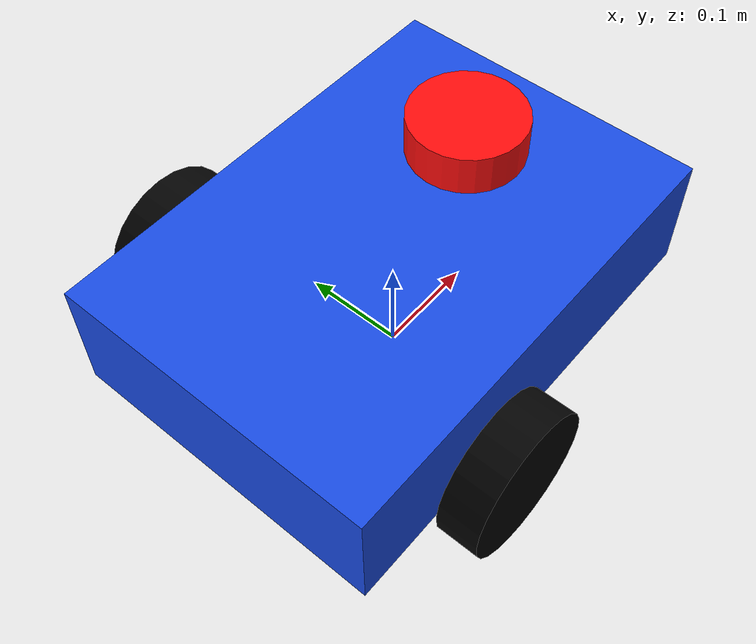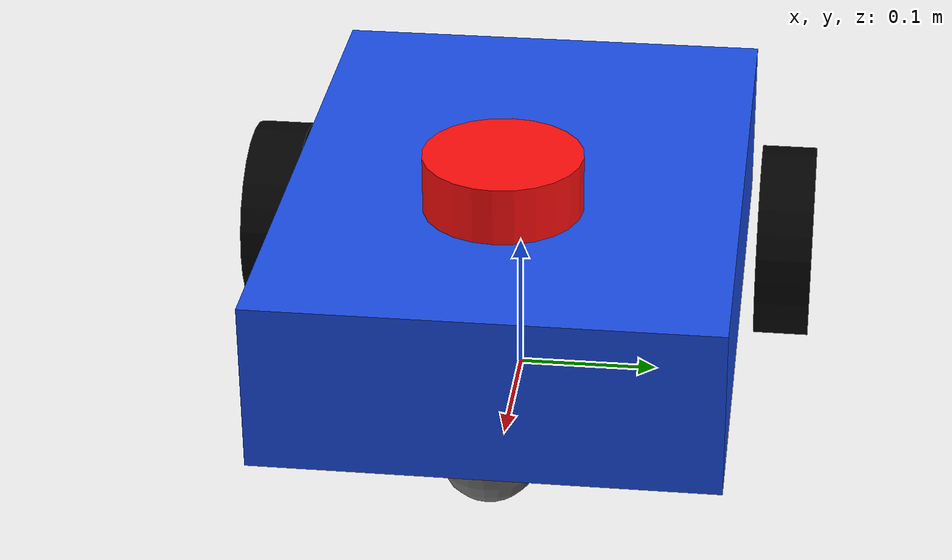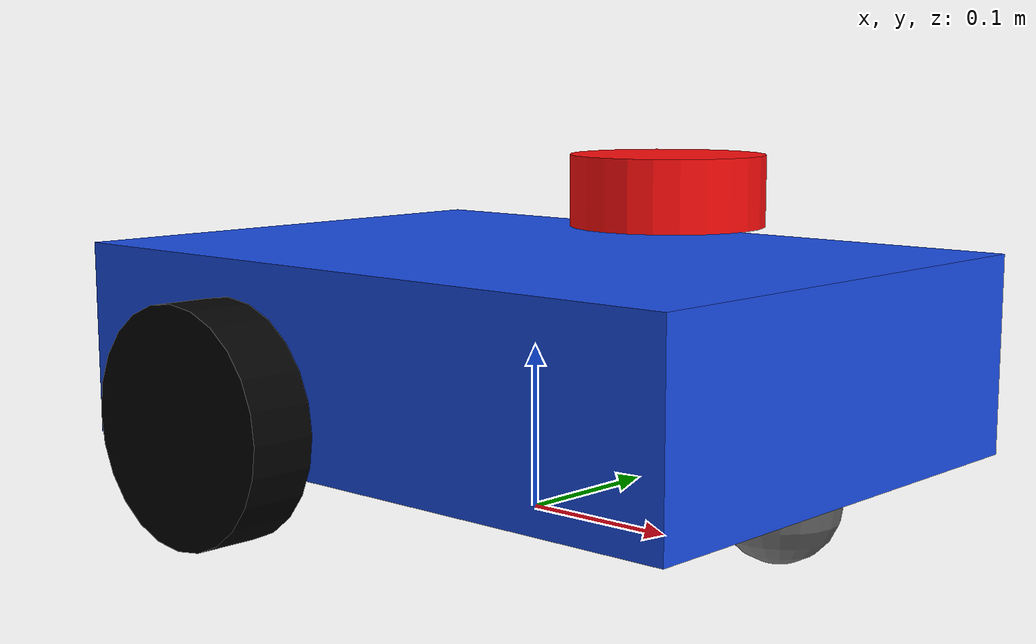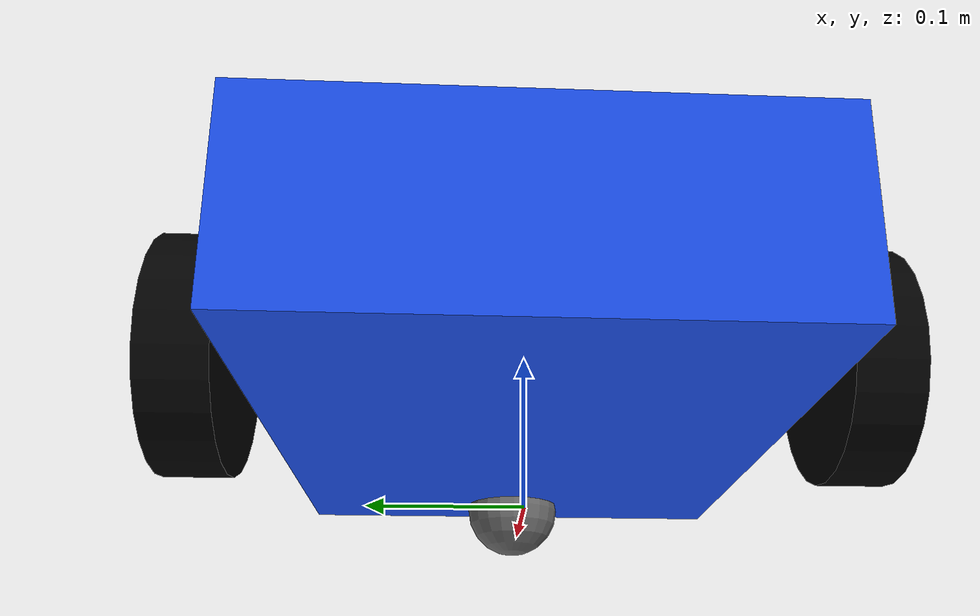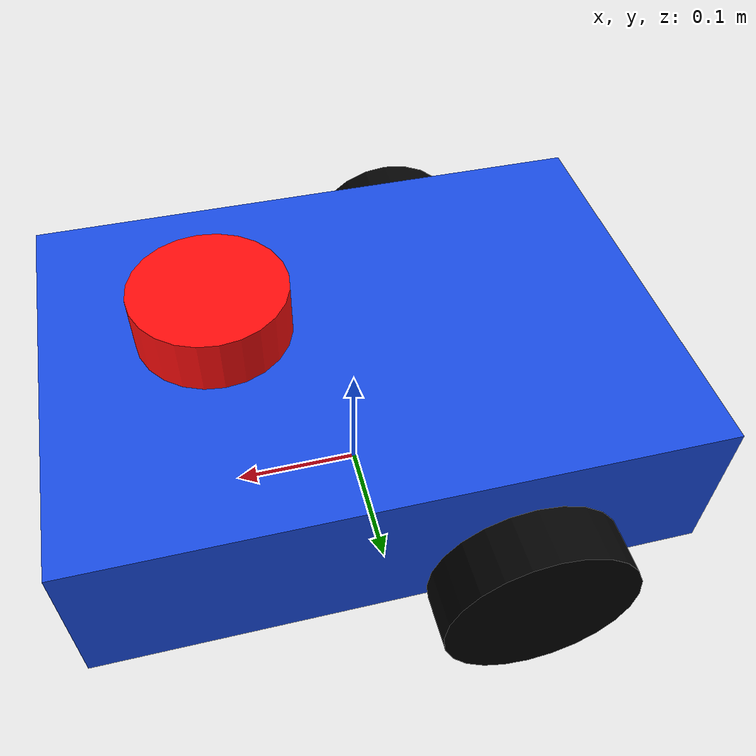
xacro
<?xml version="1.0"?>

<!-- Starts the robot definition
Defines the name
xmlns:xacro="http://www.ros.org/wiki/xacro" Enables the Xacro syntax, without this the file would be plain URDF -->
<robot name="simple_sd_robot" xmlns:xacro="http://www.ros.org/wiki/xacro">

  <!-- Robot Dimensions -->

  <xacro:property name="base_length" value="0.45"/> <!-- Main robot body length -->
  <xacro:property name="base_width"  value="0.32"/> <!-- Main robot body width -->
  <xacro:property name="base_height" value="0.12"/> <!-- Main robot body height -->

  <!-- Rear drive wheels dimensions and positions -->
  <xacro:property name="wheel_radius" value="0.07"/>
  <xacro:property name="wheel_width"  value="0.04"/>
  <xacro:property name="wheel_x"      value="-0.08"/> <!-- Wheels are behind the center of the base link -->
  <xacro:property name="wheel_y"      value="0.19"/>  <!-- Left Wheel at postive y and right wheel at negative y -->
  <xacro:property name="wheel_z"      value="-0.03"/> <!-- Wheels below center of base link -->

  <!-- Front caster wheel dimensions and positions -->
  <xacro:property name="caster_radius" value="0.035"/>
  <xacro:property name="caster_x"      value="0.18"/> <!-- Caster wheel placed forward of robot center -->
  <xacro:property name="caster_z"      value="-0.065"/> <!-- Caster wheel placed below the base center -->

  <!-- Base Footprint -->

  <link name="base_footprint"/> <!-- Base_footprint is a reference frame, represents robots position projected onto the ground. -->

  <joint name="base_footprint_joint" type="fixed"> <!-- Fixed joint means the child link does not move relative to the parent link. -->
    <parent link="base_footprint"/>
    <child link="base_link"/> <!-- base_footprint is the parent link, base_link is the child link. -->
    <origin xyz="0 0 0.10" rpy="0 0 0"/> <!-- base_link is 0.10 m above the parent link (base_footprint). -->
  </joint>

  <!-- Base Link -->

  <link name="base_link"> <!-- The main body coordinate frame. -->
    <visual> <!-- Visual Box -->
      <origin xyz="0 0 0" rpy="0 0 0"/> <!-- Visual box is centered on the base_link frame. -->
      <geometry>
        <box size="${base_length} ${base_width} ${base_height}"/> <!-- Creates a rectangular box. The Xacros are defined earlier in the file. -->
      </geometry>
      <material name="blue">
        <color rgba="0.1 0.3 0.9 1"/> <!-- RGBA format, A (alpha is transparency). -->
      </material>
    </visual>

    <collision> <!-- Defines the collision shape of the robot, used by the physics side of the simulation. -->
      <origin xyz="0 0 0" rpy="0 0 0"/>
      <geometry>
        <box size="${base_length} ${base_width} ${base_height}"/> <!-- Same dimensions as the robot. -->
      </geometry>
    </collision>

    <inertial> <!-- Defines mass and inertia -->
      <origin xyz="0 0 0" rpy="0 0 0"/>
      <mass value="5.0"/>
      <!-- Inertia matrix, defines how hard it is rotate the body about each axis. -->
      <inertia
        ixx="0.05" ixy="0.0" ixz="0.0"
        iyy="0.05" iyz="0.0"
        izz="0.08"/>
    </inertial>
  </link>

  <!-- Left Rear Drive Wheel -->

  <link name="left_wheel_link"> <!-- Defines left wheel as a seperate link, since it rotates -->
    <visual>
      <origin xyz="0 0 0" rpy="1.5708 0 0"/> <!-- Wheel visual at the origin of the wheel frame. -->
      <geometry> <!-- The cylinder is also rotated about the x axis by 90 deg - it is aligned along y axis initially, now rotated to align along z axis. -->
        <cylinder radius="${wheel_radius}" length="${wheel_width}"/> <!-- Xacro expression that defines wheel dimensions. -->
      </geometry>
      <material name="black"> <!-- Black Wheels -->
        <color rgba="0.01 0.01 0.01 1"/>
      </material>
    </visual>

    <collision> <!-- Collision geometry to match visual geometry -->
      <origin xyz="0 0 0" rpy="1.5708 0 0"/>
      <geometry>
        <cylinder radius="${wheel_radius}" length="${wheel_width}"/>
      </geometry>
    </collision>

    <inertial> <!-- Wheel intertia and mass definitions. -->
      <mass value="0.5"/>
      <!--Rotational inertias are approximated at 0.001, need to calculate wheel inertia based on mass, r and w for accurate simulation. -->
      <inertia
        ixx="0.001" ixy="0.0" ixz="0.0"
        iyy="0.001" iyz="0.0"
        izz="0.001"/>
    </inertial>
  </link>

  <joint name="left_wheel_joint" type="continuous"> <!-- Defines Joint connecting left wheel to the base, continuous means there's no angle limits on rotation. -->
    <parent link="base_link"/> <!-- Left wheel link is the child link to the base_link (parent_link). -->
    <child link="left_wheel_link"/> <!-- Wheel link is attached to the base link. -->
    <origin xyz="${wheel_x} ${wheel_y} ${wheel_z}" rpy="0 0 0"/> <!--Left wheel position relative to the base_link. -->
    <axis xyz="0 1 0"/> <!-- Wheel rotates around y-axis. -->
  </joint>

  <!-- Right Rear Drive Wheel -->
<!-- Right wheel link is identical to the left, except negative values in the y axis, so it places it on the right. -->
  <link name="right_wheel_link">
    <visual>
      <origin xyz="0 0 0" rpy="1.5708 0 0"/>
      <geometry>
        <cylinder radius="${wheel_radius}" length="${wheel_width}"/>
      </geometry>
      <material name="black">
        <color rgba="0.01 0.01 0.01 1"/>
      </material>
    </visual>

    <collision>
      <origin xyz="0 0 0" rpy="1.5708 0 0"/>
      <geometry>
        <cylinder radius="${wheel_radius}" length="${wheel_width}"/>
      </geometry>
    </collision>

    <inertial>
      <mass value="0.5"/>
      <inertia
        ixx="0.001" ixy="0.0" ixz="0.0"
        iyy="0.001" iyz="0.0"
        izz="0.001"/>
    </inertial>
  </link>

  <joint name="right_wheel_joint" type="continuous">
    <parent link="base_link"/>
    <child link="right_wheel_link"/>
    <origin xyz="${wheel_x} -${wheel_y} ${wheel_z}" rpy="0 0 0"/>
    <axis xyz="0 1 0"/>
  </joint>

  <!-- Front Caster Wheel -->
<!-- Defining the caster wheel. -->
  <link name="caster_link">
    <visual>
      <origin xyz="0 0 0" rpy="0 0 0"/>
      <geometry>
        <sphere radius="${caster_radius}"/> <!-- Caster is modeled as a sphere. -->
      </geometry>
      <material name="gray">
        <color rgba="0.4 0.4 0.4 1"/>
      </material>
    </visual>

    <collision>
      <origin xyz="0 0 0" rpy="0 0 0"/>
      <geometry>
        <sphere radius="${caster_radius}"/>
      </geometry>
    </collision>

    <inertial>
      <mass value="0.1"/>
      <inertia
        ixx="0.0001" ixy="0.0" ixz="0.0"
        iyy="0.0001" iyz="0.0"
        izz="0.0001"/>
    </inertial>
  </link>

  <joint name="caster_joint" type="fixed"> <!-- Defines the caster is a fixed sphere. -->
    <parent link="base_link"/>
    <child link="caster_link"/> <!-- Caster link is the child link to the parent, base_link. -->
    <origin xyz="${caster_x} 0 ${caster_z}" rpy="0 0 0"/>
  </joint>

  <!-- Lidar Link -->

  <link name="lidar_link">
    <visual>
      <origin xyz="0 0 0" rpy="0 0 0"/>
      <geometry>
        <cylinder radius="0.055" length="0.04"/>
      </geometry>
      <material name="red">
        <color rgba="1 0.05 0.05 1"/>
      </material>
    </visual>

    <collision>
      <origin xyz="0 0 0" rpy="0 0 0"/>
      <geometry>
        <cylinder radius="0.055" length="0.04"/>
      </geometry>
    </collision>

    <inertial>
      <mass value="0.2"/>
      <inertia
        ixx="0.0002" ixy="0.0" ixz="0.0"
        iyy="0.0002" iyz="0.0"
        izz="0.0002"/>
    </inertial>
  </link>

  <joint name="lidar_joint" type="fixed"> <!-- The lidar is fixed to the base. It does not move relative to the robot body. -->
    <parent link="base_link"/>
    <child link="lidar_link"/>
    <origin xyz="0.10 0 0.10" rpy="0 0 0"/>
  </joint>

  <!-- Gazebo Visual Materials -->

  <gazebo reference="base_link"> <!-- Gives Gazebo specific material styling to, in this case base_link. -->
    <material>Gazebo/Blue</material> <!-- URDF material affects general robot visualization, Gazebo material block affects how Gazebo renders the model. -->
  </gazebo>

  <gazebo reference="left_wheel_link">
    <material>Gazebo/Black</material>
  </gazebo>

  <gazebo reference="right_wheel_link">
    <material>Gazebo/Black</material>
  </gazebo>

  <gazebo reference="caster_link">
    <material>Gazebo/Grey</material>
  </gazebo>

  <gazebo reference="lidar_link">
    <material>Gazebo/Red</material>
  </gazebo>

  <!-- Gazebo Diff Drive Plugin -->

  <gazebo>
    <plugin name="diff_drive_controller" filename="libgazebo_ros_diff_drive.so"> <!-- Loads Gazebo-ROS differential drive plugin. -->
    <!-- Makes the robot behave like a differential drive robot, listens to velocity commands and moves the wheels. -->
      <ros> <!-- Puts the plugin in the root namespace. -->
        <namespace>/</namespace> <!-- The topics apprear as, for example, /cmd_vel instead of say, /sd_robot/cmd_vel, etc. -->
      </ros>

      <left_joint>left_wheel_joint</left_joint> <!-- Indicates to the plugin which joints drive the wheels. -->
      <right_joint>right_wheel_joint</right_joint> <!-- Robot will not move if the names are wrong. -->

      <wheel_separation>0.38</wheel_separation> <!-- Tells the plugin the seperation/distance between R/L wheels. -->
      <wheel_diameter>0.14</wheel_diameter> <!-- Wheel diameter - if values are off, the odometry will be off. -->

      <max_wheel_torque>20</max_wheel_torque> <!-- Upper limit on the wheel torque. -->
      <max_wheel_acceleration>2.0</max_wheel_acceleration> <!-- Upper limit on the acceleration. -->
      <command_topic>cmd_vel</command_topic> <!-- Tells the plugin which topic to listen to. -->
      <odometry_topic>odom</odometry_topic> <!-- Tells the plugin to publish odometry on the /odom topic. -->
      <odometry_frame>odom</odometry_frame> <!--Odometry frame is called odom. -->
      <robot_base_frame>base_footprint</robot_base_frame> <!-- Odometry is published for the robot frame. -->

      <publish_odom>true</publish_odom> <!-- Means the plugin publishes /odom messages -->
      <publish_odom_tf>true</publish_odom_tf> <!--Plugin publishes the TF transform  -->
      <publish_wheel_tf>true</publish_wheel_tf><!-- Plugin publishes wheel transforms -->

      <update_rate>50</update_rate> <!-- Updates at a rate of 50 Hz (50 times a second). -->
    </plugin>
  </gazebo>

  <!-- Gazebo Lidar Sensor -->

  <gazebo reference="lidar_link"> <!-- Attaches Gazebo specific sensor to lidar link, Lidar sensor moves with the robot. -->
    <sensor name="lidar_sensor" type="ray"> <!-- Creates a ray sensor - how Gazebo simulates LiDAR. -->
      <always_on>true</always_on> <!-- LiDAR always stays active. -->
      <visualize>false</visualize>  <!-- Gazebo does not visualize the rays, can clutter view if set to true. -->
      <update_rate>10</update_rate> <!-- Updates at a rate of 10 Hz, or 10 times (scans) a second. -->

      <ray>
        <scan>
          <horizontal>
            <samples>360</samples> <!-- Creates 360 LiDAR rays per scan. Scan goes from -pi to pi, meaning 1 ray per degree. -->
            <resolution>1</resolution> <!-- Each sample produces one ray. -->
            <min_angle>-3.14159</min_angle> <!-- Min Angle from -pi radians or -180 degrees. -->
            <max_angle>3.14159</max_angle> <!-- Max Angle to pi radians or 180 degrees, giving a 360 degree field of view. -->
          </horizontal>
        </scan>

        <range>
          <min>0.12</min> <!-- Minimum readable distance at 0.12 m or 12 cm. -->
          <max>8.0</max> <!-- Maximum readable distance at 8.0 m. -->
          <resolution>0.01</resolution> <!-- Range resolution at 0.01 m or 1 cm. -->
        </range>
      </ray>

      <plugin name="gazebo_ros_laser" filename="libgazebo_ros_ray_sensor.so"> <!-- Loads the Gazebo ROS ray sensor plugin. -->
        <ros> <!-- Gazebo simulates the ray sensor, the plugin converts Gazebo sensor data into ROS2 messages. -->
          <namespace>/</namespace> <!-- Publishes the LiDAR output to /scan. -->
          <remapping>~/out:=scan</remapping> <!-- Taking the plugin's default topic and remapping to /scan, namespace is '/', so final topic is /scan. -->
        </ros>
        <output_type>sensor_msgs/LaserScan</output_type> <!-- Defines the output message type is sensor_msgs/msg/LaserScan, the standard message type used by 2D LiDARs. -->
        <frame_name>lidar_link</frame_name> <!-- Says the LaserScan data is reported in the frame lidar_link -->
      </plugin> <!-- Each scan message has the header.frame_id = lidar_link -->
    </sensor>
  </gazebo>

</robot> <!-- Ends the robot definition -->
